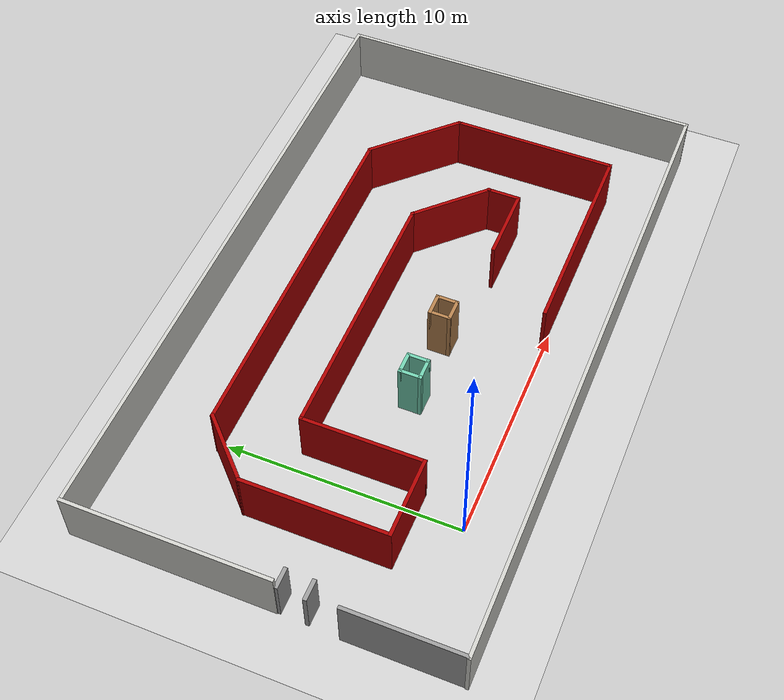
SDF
<sdf version="1.6">
 <world name="default">
  <light name="sun" type="directional">
   <pose>0 0 10 0 -0 0</pose>
   <diffuse>0.8 0.8 0.8 1</diffuse>
   <specular>0.2 0.2 0.2 1</specular>
   <attenuation>
    <range>1000</range>
    <constant>0.9</constant>
    <linear>0.01</linear>
    <quadratic>0.001</quadratic>
   </attenuation>
   <direction>-0.5 0.1 -0.9</direction>
  </light>
  <model name="ground_plane">
   <static>1</static>
   <link name="link">
    <collision name="collision">
     <geometry><plane><normal>0 0 1</normal><size>100 100</size></plane></geometry>
     <surface>
      <contact><collide_bitmask>65535</collide_bitmask></contact>
      <friction><ode><mu>100</mu><mu2>50</mu2></ode></friction>
     </surface>
    </collision>
    <visual name="visual">
     <cast_shadows>0</cast_shadows>
     <geometry><plane><normal>0 0 1</normal><size>100 100</size></plane></geometry>
     <material>
      <script><uri>file://media/materials/scripts/gazebo.material</uri><name>Gazebo/Grey</name></script>
     </material>
    </visual>
   </link>
  </model>
  <gravity>0 0 -9.8</gravity>
  <magnetic_field>6e-06 2.3e-05 -4.2e-05</magnetic_field>
  <atmosphere type="adiabatic"/>
  <physics name="default_physics" default="0" type="ode">
   <max_step_size>0.001</max_step_size>
   <real_time_factor>1</real_time_factor>
   <real_time_update_rate>1000</real_time_update_rate>
  </physics>
  <scene><ambient>0.4 0.4 0.4 1</ambient><background>0.7 0.7 0.7 1</background><shadows>1</shadows></scene>
  <spherical_coordinates>
   <surface_model>EARTH_WGS84</surface_model>
   <latitude_deg>0</latitude_deg>
   <longitude_deg>0</longitude_deg>
   <elevation>0</elevation>
   <heading_deg>0</heading_deg>
  </spherical_coordinates>
  <model name="SimpleFloor">
   <pose>8.03197 5.72247 0 0 -0 0</pose>
   <link name="Door_0">
    <collision name="Door_0_Collision">
     <geometry><box><size>0.9 0.17 2</size></box></geometry>
     <pose>0 0 1 0 -0 0</pose>
    </collision>
    <visual name="Door_0_Visual">
     <pose>0 0 1 0 -0 0</pose>
     <geometry><box><size>0.9 0.17 2</size></box></geometry>
     <material>
      <script><uri>file://media/materials/scripts/gazebo.material</uri><name>Gazebo/Grey</name></script>
     </material>
    </visual>
    <pose>-13.3393 -0.662316 0 0 -0 0</pose>
   </link>
   <link name="Door_1">
    <collision name="Door_1_Collision">
     <geometry><box><size>0.9 0.17 2</size></box></geometry>
     <pose>0 0 1 0 -0 0</pose>
    </collision>
    <visual name="Door_1_Visual">
     <pose>0 0 1 0 -0 0</pose>
     <geometry><box><size>0.9 0.17 2</size></box></geometry>
     <material>
      <script><uri>file://media/materials/scripts/gazebo.material</uri><name>Gazebo/Grey</name></script>
     </material>
    </visual>
    <pose>-13.3768 -1.82291 0 0 -0 0</pose>
   </link>
   <link name="Wall_10">
    <collision name="Wall_10_Collision">
     <geometry><box><size>1 0.15 2.5</size></box></geometry>
     <pose>0 0 1.25 0 -0 0</pose>
    </collision>
    <visual name="Wall_10_Visual">
     <pose>0 0 1.25 0 -0 0</pose>
     <geometry><box><size>1 0.15 2.5</size></box></geometry>
     <material>
      <script><uri>file://media/materials/scripts/gazebo.material</uri><name>Gazebo/Grey</name></script>
      <ambient>0.435294 0.796078 0.67451 1</ambient>
     </material>
     <meta><layer>0</layer></meta>
    </visual>
    <pose>-3.21858 -1.28803 0 0 -0 0</pose>
   </link>
   <link name="Wall_11">
    <collision name="Wall_11_Collision">
     <geometry><box><size>1 0.15 2.5</size></box></geometry>
     <pose>0 0 1.25 0 -0 0</pose>
    </collision>
    <visual name="Wall_11_Visual">
     <pose>0 0 1.25 0 -0 0</pose>
     <geometry><box><size>1 0.15 2.5</size></box></geometry>
     <material>
      <script><uri>file://media/materials/scripts/gazebo.material</uri><name>Gazebo/Grey</name></script>
      <ambient>0.435294 0.796078 0.67451 1</ambient>
     </material>
     <meta><layer>0</layer></meta>
    </visual>
    <pose>-2.79358 -1.71303 0 0 0 -1.5708</pose>
   </link>
   <link name="Wall_12">
    <collision name="Wall_12_Collision">
     <geometry><box><size>1 0.15 2.5</size></box></geometry>
     <pose>0 0 1.25 0 -0 0</pose>
    </collision>
    <visual name="Wall_12_Visual">
     <pose>0 0 1.25 0 -0 0</pose>
     <geometry><box><size>1 0.15 2.5</size></box></geometry>
     <material>
      <script><uri>file://media/materials/scripts/gazebo.material</uri><name>Gazebo/Grey</name></script>
      <ambient>0.435294 0.796078 0.67451 1</ambient>
     </material>
     <meta><layer>0</layer></meta>
    </visual>
    <pose>-3.21858 -2.13803 0 0 -0 3.14159</pose>
   </link>
   <link name="Wall_15">
    <collision name="Wall_15_Collision">
     <geometry><box><size>1 0.15 2.5</size></box></geometry>
     <pose>0 0 1.25 0 -0 0</pose>
    </collision>
    <visual name="Wall_15_Visual">
     <pose>0 0 1.25 0 -0 0</pose>
     <geometry><box><size>1 0.15 2.5</size></box></geometry>
     <material>
      <script><uri>file://media/materials/scripts/gazebo.material</uri><name>Gazebo/Wood</name></script>
      <ambient>1 1 1 1</ambient>
     </material>
     <meta><layer>0</layer></meta>
    </visual>
    <pose>-0.048758 -1.28744 0 0 -0 0</pose>
   </link>
   <link name="Wall_16">
    <collision name="Wall_16_Collision">
     <geometry><box><size>1 0.15 2.5</size></box></geometry>
     <pose>0 0 1.25 0 -0 0</pose>
    </collision>
    <visual name="Wall_16_Visual">
     <pose>0 0 1.25 0 -0 0</pose>
     <geometry><box><size>1 0.15 2.5</size></box></geometry>
     <material>
      <script><uri>file://media/materials/scripts/gazebo.material</uri><name>Gazebo/Wood</name></script>
      <ambient>1 1 1 1</ambient>
     </material>
     <meta><layer>0</layer></meta>
    </visual>
    <pose>0.376242 -1.71244 0 0 0 -1.5708</pose>
   </link>
   <link name="Wall_17">
    <collision name="Wall_17_Collision">
     <geometry><box><size>1 0.15 2.5</size></box></geometry>
     <pose>0 0 1.25 0 -0 0</pose>
    </collision>
    <visual name="Wall_17_Visual">
     <pose>0 0 1.25 0 -0 0</pose>
     <geometry><box><size>1 0.15 2.5</size></box></geometry>
     <material>
      <script><uri>file://media/materials/scripts/gazebo.material</uri><name>Gazebo/Wood</name></script>
      <ambient>1 1 1 1</ambient>
     </material>
     <meta><layer>0</layer></meta>
    </visual>
    <pose>-0.048758 -2.13744 0 0 -0 3.14159</pose>
   </link>
   <link name="Wall_18">
    <collision name="Wall_18_Collision">
     <geometry><box><size>1 0.15 2.5</size></box></geometry>
     <pose>0 0 1.25 0 -0 0</pose>
    </collision>
    <visual name="Wall_18_Visual">
     <pose>0 0 1.25 0 -0 0</pose>
     <geometry><box><size>1 0.15 2.5</size></box></geometry>
     <material>
      <script><uri>file://media/materials/scripts/gazebo.material</uri><name>Gazebo/Wood</name></script>
      <ambient>1 1 1 1</ambient>
     </material>
     <meta><layer>0</layer></meta>
    </visual>
    <pose>-0.473758 -1.71244 0 0 -0 1.5708</pose>
   </link>
   <link name="Wall_20">
    <collision name="Wall_20_Collision">
     <geometry><box><size>9 0.15 2.5</size></box></geometry>
     <pose>0 0 1.25 0 -0 0</pose>
    </collision>
    <visual name="Wall_20_Visual">
     <pose>0 0 1.25 0 -0 0</pose>
     <geometry><box><size>9 0.15 2.5</size></box></geometry>
     <material>
      <script><uri>file://media/materials/scripts/gazebo.material</uri><name>Gazebo/Grey</name></script>
      <ambient>0.666667 0 0 1</ambient>
     </material>
     <meta><layer>0</layer></meta>
    </visual>
    <pose>5.69409 -5.61498 0 0 -0 0</pose>
   </link>
   <link name="Wall_21">
    <collision name="Wall_21_Collision">
     <geometry><box><size>7.25 0.15 2.5</size></box></geometry>
     <pose>0 0 1.25 0 -0 0</pose>
    </collision>
    <visual name="Wall_21_Visual">
     <pose>0 0 1.25 0 -0 0</pose>
     <geometry><box><size>7.25 0.15 2.5</size></box></geometry>
     <material>
      <script><uri>file://media/materials/scripts/gazebo.material</uri><name>Gazebo/Grey</name></script>
      <ambient>0.666667 0 0 1</ambient>
     </material>
     <meta><layer>0</layer></meta>
    </visual>
    <pose>10.1191 -2.06498 0 0 -0 1.5708</pose>
   </link>
   <link name="Wall_22">
    <collision name="Wall_22_Collision">
     <geometry><box><size>4.5 0.15 2.5</size></box></geometry>
     <pose>0 0 1.25 0 -0 0</pose>
    </collision>
    <visual name="Wall_22_Visual">
     <pose>0 0 1.25 0 -0 0</pose>
     <geometry><box><size>4.5 0.15 2.5</size></box></geometry>
     <material>
      <script><uri>file://media/materials/scripts/gazebo.material</uri><name>Gazebo/Grey</name></script>
      <ambient>0.666667 0 0 1</ambient>
     </material>
     <meta><layer>0</layer></meta>
    </visual>
    <pose>8.58113 3.02298 0 0 -0 2.35619</pose>
   </link>
   <link name="Wall_23">
    <collision name="Wall_23_Collision">
     <geometry><box><size>15.5 0.15 2.5</size></box></geometry>
     <pose>0 0 1.25 0 -0 0</pose>
    </collision>
    <visual name="Wall_23_Visual">
     <pose>0 0 1.25 0 -0 0</pose>
     <geometry><box><size>15.5 0.15 2.5</size></box></geometry>
     <material>
      <script><uri>file://media/materials/scripts/gazebo.material</uri><name>Gazebo/Grey</name></script>
      <ambient>0.666667 0 0 1</ambient>
     </material>
     <meta><layer>0</layer></meta>
    </visual>
    <pose>-0.631822 4.56093 0 0 -0 3.14159</pose>
   </link>
   <link name="Wall_24">
    <collision name="Wall_24_Collision">
     <geometry><box><size>3.25 0.15 2.5</size></box></geometry>
     <pose>0 0 1.25 0 -0 0</pose>
    </collision>
    <visual name="Wall_24_Visual">
     <pose>0 0 1.25 0 -0 0</pose>
     <geometry><box><size>3.25 0.15 2.5</size></box></geometry>
     <material>
      <script><uri>file://media/materials/scripts/gazebo.material</uri><name>Gazebo/Grey</name></script>
      <ambient>0.666667 0 0 1</ambient>
     </material>
     <meta><layer>0</layer></meta>
    </visual>
    <pose>-9.40284 3.46492 0 0 0 -2.35619</pose>
   </link>
   <link name="Wall_25">
    <collision name="Wall_25_Collision">
     <geometry><box><size>6.25 0.15 2.5</size></box></geometry>
     <pose>0 0 1.25 0 -0 0</pose>
    </collision>
    <visual name="Wall_25_Visual">
     <pose>0 0 1.25 0 -0 0</pose>
     <geometry><box><size>6.25 0.15 2.5</size></box></geometry>
     <material>
      <script><uri>file://media/materials/scripts/gazebo.material</uri><name>Gazebo/Grey</name></script>
      <ambient>0.666667 0 0 1</ambient>
     </material>
     <meta><layer>0</layer></meta>
    </visual>
    <pose>-10.4989 -0.681097 0 0 0 -1.5708</pose>
   </link>
   <link name="Wall_26">
    <collision name="Wall_26_Collision">
     <geometry><box><size>3.5 0.15 2.5</size></box></geometry>
     <pose>0 0 1.25 0 -0 0</pose>
    </collision>
    <visual name="Wall_26_Visual">
     <pose>0 0 1.25 0 -0 0</pose>
     <geometry><box><size>3.5 0.15 2.5</size></box></geometry>
     <material>
      <script><uri>file://media/materials/scripts/gazebo.material</uri><name>Gazebo/Grey</name></script>
      <ambient>0.666667 0 0 1</ambient>
     </material>
     <meta><layer>0</layer></meta>
    </visual>
    <pose>-8.82385 -3.7311 0 0 -0 0</pose>
   </link>
   <link name="Wall_27">
    <collision name="Wall_27_Collision">
     <geometry><box><size>5.25 0.15 2.5</size></box></geometry>
     <pose>0 0 1.25 0 -0 0</pose>
    </collision>
    <visual name="Wall_27_Visual">
     <pose>0 0 1.25 0 -0 0</pose>
     <geometry><box><size>5.25 0.15 2.5</size></box></geometry>
     <material>
      <script><uri>file://media/materials/scripts/gazebo.material</uri><name>Gazebo/Grey</name></script>
      <ambient>0.666667 0 0 1</ambient>
     </material>
     <meta><layer>0</layer></meta>
    </visual>
    <pose>-7.14885 -1.1811 0 0 -0 1.5708</pose>
   </link>
   <link name="Wall_28">
    <collision name="Wall_28_Collision">
     <geometry><box><size>11.5 0.15 2.5</size></box></geometry>
     <pose>0 0 1.25 0 -0 0</pose>
    </collision>
    <visual name="Wall_28_Visual">
     <pose>0 0 1.25 0 -0 0</pose>
     <geometry><box><size>11.5 0.15 2.5</size></box></geometry>
     <material>
      <script><uri>file://media/materials/scripts/gazebo.material</uri><name>Gazebo/Grey</name></script>
      <ambient>0.666667 0 0 1</ambient>
     </material>
     <meta><layer>0</layer></meta>
    </visual>
    <pose>-1.47385 1.3689 0 0 -0 0</pose>
   </link>
   <link name="Wall_29">
    <collision name="Wall_29_Collision">
     <geometry><box><size>3.75 0.15 2.5</size></box></geometry>
     <pose>0 0 1.25 0 -0 0</pose>
    </collision>
    <visual name="Wall_29_Visual">
     <pose>0 0 1.25 0 -0 0</pose>
     <geometry><box><size>3.75 0.15 2.5</size></box></geometry>
     <material>
      <script><uri>file://media/materials/scripts/gazebo.material</uri><name>Gazebo/Grey</name></script>
      <ambient>0.666667 0 0 1</ambient>
     </material>
     <meta><layer>0</layer></meta>
    </visual>
    <pose>5.47394 0.09611 0 0 0 -0.785398</pose>
   </link>
   <link name="Wall_3">
    <collision name="Wall_3_Collision">
     <geometry><box><size>8.75 0.15 2.5</size></box></geometry>
     <pose>0 0 1.25 0 -0 0</pose>
    </collision>
    <visual name="Wall_3_Visual">
     <pose>0 0 1.25 0 -0 0</pose>
     <geometry><box><size>8.75 0.15 2.5</size></box></geometry>
     <material>
      <script><uri>file://media/materials/scripts/gazebo.material</uri><name>Gazebo/CeilingTiled</name></script>
      <ambient>1 1 1 1</ambient>
     </material>
     <meta><layer>0</layer></meta>
    </visual>
    <pose>-13.7512 3.75 0 0 -0 1.5708</pose>
   </link>
   <link name="Wall_30">
    <collision name="Wall_30_Collision">
     <geometry><box><size>1.5 0.15 2.5</size></box></geometry>
     <pose>0 0 1.25 0 -0 0</pose>
    </collision>
    <visual name="Wall_30_Visual">
     <pose>0 0 1.25 0 -0 0</pose>
     <geometry><box><size>1.5 0.15 2.5</size></box></geometry>
     <material>
      <script><uri>file://media/materials/scripts/gazebo.material</uri><name>Gazebo/Grey</name></script>
      <ambient>0.666667 0 0 1</ambient>
     </material>
     <meta><layer>0</layer></meta>
    </visual>
    <pose>6.74673 -1.85168 0 0 0 -1.5708</pose>
   </link>
   <link name="Wall_31">
    <collision name="Wall_31_Collision">
     <geometry><box><size>3.25 0.15 2.5</size></box></geometry>
     <pose>0 0 1.25 0 -0 0</pose>
    </collision>
    <visual name="Wall_31_Visual">
     <pose>0 0 1.25 0 -0 0</pose>
     <geometry><box><size>3.25 0.15 2.5</size></box></geometry>
     <material>
      <script><uri>file://media/materials/scripts/gazebo.material</uri><name>Gazebo/Grey</name></script>
      <ambient>0.666667 0 0 1</ambient>
     </material>
     <meta><layer>0</layer></meta>
    </visual>
    <pose>5.19673 -2.52668 0 0 -0 3.14159</pose>
   </link>
   <link name="Wall_4">
    <collision name="Wall_4_Collision">
     <geometry><box><size>27.75 0.15 2.5</size></box></geometry>
     <pose>0 0 1.25 0 -0 0</pose>
    </collision>
    <visual name="Wall_4_Visual">
     <pose>0 0 1.25 0 -0 0</pose>
     <geometry><box><size>27.75 0.15 2.5</size></box></geometry>
     <material>
      <script><uri>file://media/materials/scripts/gazebo.material</uri><name>Gazebo/CeilingTiled</name></script>
      <ambient>1 1 1 1</ambient>
     </material>
     <meta><layer>0</layer></meta>
    </visual>
    <pose>0.048832 8.05 0 0 -0 0</pose>
   </link>
   <link name="Wall_5">
    <collision name="Wall_5_Collision">
     <geometry><box><size>16.25 0.15 2.5</size></box></geometry>
     <pose>0 0 1.25 0 -0 0</pose>
    </collision>
    <visual name="Wall_5_Visual">
     <pose>0 0 1.25 0 -0 0</pose>
     <geometry><box><size>16.25 0.15 2.5</size></box></geometry>
     <material>
      <script><uri>file://media/materials/scripts/gazebo.material</uri><name>Gazebo/CeilingTiled</name></script>
      <ambient>1 1 1 1</ambient>
     </material>
     <meta><layer>0</layer></meta>
    </visual>
    <pose>13.8488 0 0 0 0 -1.5708</pose>
   </link>
   <link name="Wall_6">
    <collision name="Wall_6_Collision">
     <geometry><box><size>27.8477 0.15 2.5</size></box></geometry>
     <pose>0 0 1.25 0 -0 0</pose>
    </collision>
    <visual name="Wall_6_Visual">
     <pose>0 0 1.25 0 -0 0</pose>
     <geometry><box><size>27.8477 0.15 2.5</size></box></geometry>
     <material>
      <script><uri>file://media/materials/scripts/gazebo.material</uri><name>Gazebo/CeilingTiled</name></script>
      <ambient>1 1 1 1</ambient>
     </material>
     <meta><layer>0</layer></meta>
    </visual>
    <pose>-1e-06 -8.05 0 0 0 -3.14159</pose>
   </link>
   <link name="Wall_7">
    <collision name="Wall_7_Collision">
     <geometry><box><size>5 0.15 2.5</size></box></geometry>
     <pose>0 0 1.25 0 -0 0</pose>
    </collision>
    <visual name="Wall_7_Visual">
     <pose>0 0 1.25 0 -0 0</pose>
     <geometry><box><size>5 0.15 2.5</size></box></geometry>
     <material>
      <script><uri>file://media/materials/scripts/gazebo.material</uri><name>Gazebo/Grey</name></script>
      <ambient>1 1 1 1</ambient>
     </material>
     <meta><layer>0</layer></meta>
    </visual>
    <pose>-13.8163 -5.625 0 0 -0 1.5708</pose>
   </link>
   <link name="Wall_9">
    <collision name="Wall_9_Collision">
     <geometry><box><size>1 0.15 2.5</size></box></geometry>
     <pose>0 0 1.25 0 -0 0</pose>
    </collision>
    <visual name="Wall_9_Visual">
     <pose>0 0 1.25 0 -0 0</pose>
     <geometry><box><size>1 0.15 2.5</size></box></geometry>
     <material>
      <script><uri>file://media/materials/scripts/gazebo.material</uri><name>Gazebo/Grey</name></script>
      <ambient>0.435294 0.796078 0.67451 1</ambient>
     </material>
     <meta><layer>0</layer></meta>
    </visual>
    <pose>-3.64358 -1.71303 0 0 -0 1.5708</pose>
   </link>
   <static>1</static>
  </model>
  <model name="my_white_ball">
   <link name="link">
    <inertial>
     <mass>1</mass>
     <inertia><ixx>0.1</ixx><ixy>0</ixy><ixz>0</ixz><iyy>0.1</iyy><iyz>0</iyz><izz>0.1</izz></inertia>
    </inertial>
    <visual name="visual">
     <geometry><sphere><radius>0.1</radius></sphere></geometry>
     <material>
      <script><name>Gazebo/Grey</name><uri>file://media/materials/scripts/gazebo.material</uri></script>
      <shader type="pixel"><normal_map>__default__</normal_map></shader>
      <ambient>1 1 1 1</ambient>
      <diffuse>1 1 1 1</diffuse>
      <specular>1 1 1 1</specular>
      <emissive>1 1 1 1</emissive>
     </material>
    </visual>
    <collision name="collision">
     <geometry><sphere><radius>0.1</radius></sphere></geometry>
     <surface>
      <friction>
       <ode><mu>1</mu><mu2>1</mu2><fdir1>0 0 0</fdir1><slip1>0</slip1><slip2>0</slip2></ode>
       <torsional>
        <coefficient>1</coefficient>
        <patch_radius>0</patch_radius>
        <surface_radius>0</surface_radius>
        <use_patch_radius>1</use_patch_radius>
        <ode><slip>0</slip></ode>
       </torsional>
      </friction>
      <bounce><restitution_coefficient>0</restitution_coefficient><threshold>1e+06</threshold></bounce>
      <contact>
       <collide_without_contact>0</collide_without_contact>
       <collide_without_contact_bitmask>1</collide_without_contact_bitmask>
       <collide_bitmask>1</collide_bitmask>
       <ode>
        <soft_cfm>0</soft_cfm>
        <soft_erp>0.2</soft_erp>
        <kp>1e+13</kp>
        <kd>1</kd>
        <max_vel>0.01</max_vel>
        <min_depth>0</min_depth>
       </ode>
       <bullet>
        <split_impulse>1</split_impulse>
        <split_impulse_penetration_threshold>-0.01</split_impulse_penetration_threshold>
        <soft_cfm>0</soft_cfm>
        <soft_erp>0.2</soft_erp>
        <kp>1e+13</kp>
        <kd>1</kd>
       </bullet>
      </contact>
     </surface>
    </collision>
   </link>
   <static>0</static>
   <pose>16.0249 3.93452 0.1 0 -0 0</pose>
  </model>
  <plugin filename="libcollision_map_creator.so" name="collision_map_creator"/>
 </world>
</sdf>
